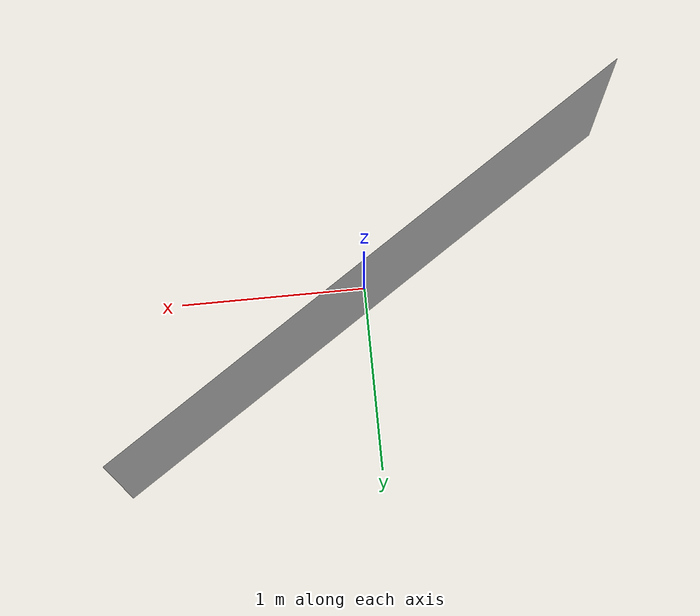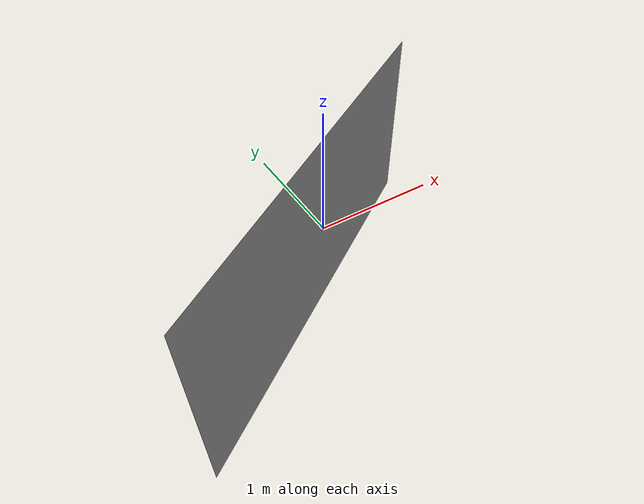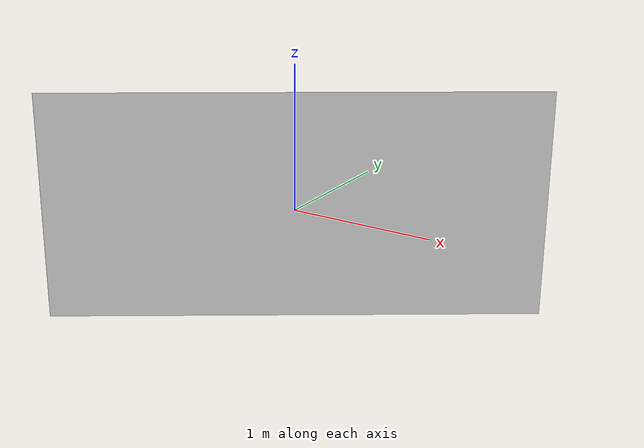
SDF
<?xml version='1.0'?>
<sdf version='1.4'>
  <model name="uni_banner">
    <static>true</static>
    <pose>0 0 0 0 0 0</pose>

    <link name="uni_banner">
      <pose>0 0 0.02 0 0 0</pose>

      <visual name="mat">
        <pose>0 0 0 1.5707 0  0.5853</pose>
        <geometry>
          <mesh>
            <uri>model://uni_banner/uni_banner.dae</uri>
            <scale>1.7 0.79305 1.7</scale>
          </mesh>
        </geometry>
      </visual>

      <collision name="collision_mat">
        <pose>0 0 0 1.5707 0  0.5853</pose>
        <geometry>
          <mesh>
            <uri>model://uni_banner/uni_banner.dae</uri>
            <scale>1.7 0.79305 1.7</scale>
          </mesh>
        </geometry>
      </collision>

    </link>
  </model>
</sdf>
